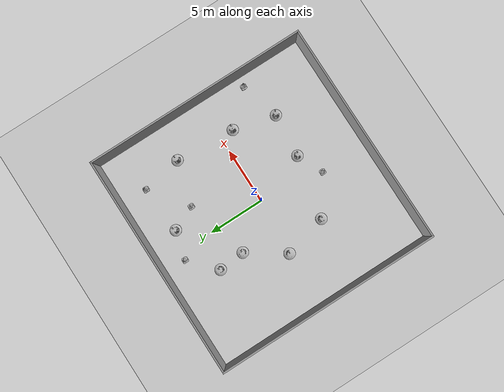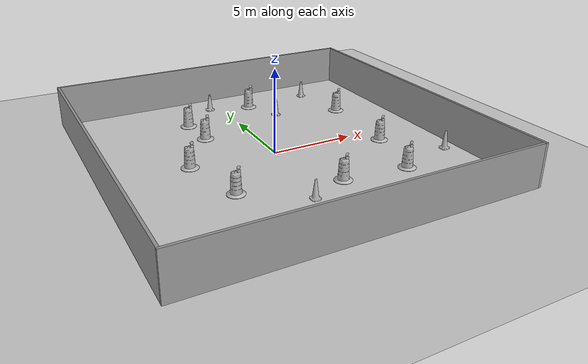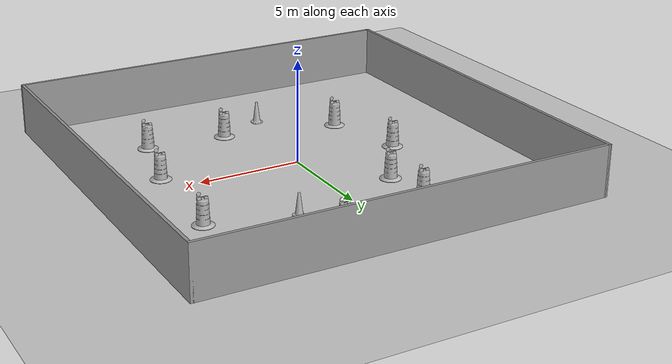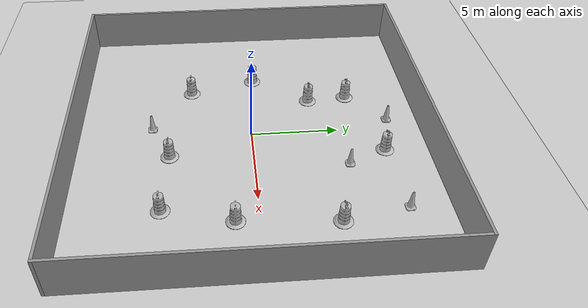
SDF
<sdf version="1.7">
 <world name="default">
  <light name="sun" type="directional">
   <pose>0 0 10 0 -0 0</pose>
   <diffuse>0.8 0.8 0.8 1</diffuse>
   <specular>0.2 0.2 0.2 1</specular>
   <attenuation>
    <range>1000</range>
    <constant>0.9</constant>
    <linear>0.01</linear>
    <quadratic>0.001</quadratic>
   </attenuation>
   <direction>-0.5 0.1 -0.9</direction>
   <spot><inner_angle>0</inner_angle><outer_angle>0</outer_angle><falloff>0</falloff></spot>
  </light>
  <model name="ground_plane">
   <static>1</static>
   <link name="link">
    <collision name="collision">
     <geometry><plane><normal>0 0 1</normal><size>100 100</size></plane></geometry>
     <surface><friction><ode><mu>100</mu><mu2>50</mu2></ode></friction></surface>
    </collision>
    <visual name="visual">
     <cast_shadows>0</cast_shadows>
     <geometry><plane><normal>0 0 1</normal><size>100 100</size></plane></geometry>
     <material>
      <script><uri>file://media/materials/scripts/gazebo.material</uri><name>Gazebo/Grey</name></script>
     </material>
    </visual>
   </link>
  </model>
  <gravity>0 0 -9.8</gravity>
  <magnetic_field>6e-06 2.3e-05 -4.2e-05</magnetic_field>
  <atmosphere type="adiabatic"/>
  <physics type="ode">
   <max_step_size>0.001</max_step_size>
   <real_time_factor>1</real_time_factor>
   <real_time_update_rate>1000</real_time_update_rate>
  </physics>
  <scene><ambient>0.4 0.4 0.4 1</ambient><background>0.7 0.7 0.7 1</background><shadows>1</shadows></scene>
  <audio><device>default</device></audio>
  <spherical_coordinates>
   <surface_model>EARTH_WGS84</surface_model>
   <latitude_deg>0</latitude_deg>
   <longitude_deg>0</longitude_deg>
   <elevation>0</elevation>
   <heading_deg>0</heading_deg>
  </spherical_coordinates>
  <model name="pista_cerrada">
   <link name="Wall_18">
    <collision name="Wall_18_Collision">
     <geometry><box><size>20 0.15 2.5</size></box></geometry>
     <pose>0 0 1.25 0 -0 0</pose>
    </collision>
    <visual name="Wall_18_Visual">
     <pose>0 0 1.25 0 -0 0</pose>
     <geometry><box><size>20 0.15 2.5</size></box></geometry>
     <material>
      <script><uri>file://media/materials/scripts/gazebo.material</uri><name>Gazebo/Grey</name></script>
      <ambient>1 1 1 1</ambient>
     </material>
     <meta><layer>0</layer></meta>
    </visual>
    <pose>-0 -9.925 0 0 -0 0</pose>
   </link>
   <link name="Wall_20">
    <collision name="Wall_20_Collision">
     <geometry><box><size>20 0.15 2.5</size></box></geometry>
     <pose>0 0 1.25 0 -0 0</pose>
    </collision>
    <visual name="Wall_20_Visual">
     <pose>0 0 1.25 0 -0 0</pose>
     <geometry><box><size>20 0.15 2.5</size></box></geometry>
     <material>
      <script><uri>file://media/materials/scripts/gazebo.material</uri><name>Gazebo/Grey</name></script>
      <ambient>1 1 1 1</ambient>
     </material>
     <meta><layer>0</layer></meta>
    </visual>
    <pose>-9.925 -0 0 0 -0 1.5708</pose>
   </link>
   <link name="Wall_22">
    <collision name="Wall_22_Collision">
     <geometry><box><size>20 0.15 2.5</size></box></geometry>
     <pose>0 0 1.25 0 -0 0</pose>
    </collision>
    <visual name="Wall_22_Visual">
     <pose>0 0 1.25 0 -0 0</pose>
     <geometry><box><size>20 0.15 2.5</size></box></geometry>
     <material>
      <script><uri>file://media/materials/scripts/gazebo.material</uri><name>Gazebo/Grey</name></script>
      <ambient>1 1 1 1</ambient>
     </material>
     <meta><layer>0</layer></meta>
    </visual>
    <pose>-0 9.925 0 0 -0 0</pose>
   </link>
   <link name="Wall_25">
    <collision name="Wall_25_Collision">
     <geometry><box><size>20 0.15 2.5</size></box></geometry>
     <pose>0 0 1.25 0 -0 0</pose>
    </collision>
    <visual name="Wall_25_Visual">
     <pose>0 0 1.25 0 -0 0</pose>
     <geometry><box><size>20 0.15 2.5</size></box></geometry>
     <material>
      <script><uri>file://media/materials/scripts/gazebo.material</uri><name>Gazebo/Grey</name></script>
      <ambient>1 1 1 1</ambient>
     </material>
     <meta><layer>0</layer></meta>
    </visual>
    <pose>9.925 -0 0 0 -0 -1.5708</pose>
   </link>
   <static>1</static>
  </model>
  <model name="Construction Cone">
   <link name="link">
    <collision name="collision">
     <geometry>
      <mesh><scale>10 10 10</scale><uri>model://construction_cone/meshes/construction_cone.dae</uri></mesh>
     </geometry>
    </collision>
    <visual name="visual">
     <geometry>
      <mesh><scale>10 10 10</scale><uri>model://construction_cone/meshes/construction_cone.dae</uri></mesh>
     </geometry>
    </visual>
    <inertial>
     <inertia><ixx>1</ixx><ixy>0</ixy><ixz>0</ixz><iyy>1</iyy><iyz>0</iyz><izz>1</izz></inertia>
     <mass>1</mass>
    </inertial>
   </link>
   <pose>2.79879 5.22335 -0 0 -1e-06 0</pose>
  </model>
  <model name="Construction Barrel">
   <link name="link">
    <inertial>
     <pose>0 0 0.4 0 -0 0</pose>
     <mass>500</mass>
     <inertia><ixx>51.2096</ixx><iyy>51.2096</iyy><izz>25</izz><ixy>0</ixy><ixz>0</ixz><iyz>0</iyz></inertia>
    </inertial>
    <collision name="collision">
     <geometry><mesh><uri>model://construction_barrel/meshes/construction_barrel.dae</uri></mesh></geometry>
    </collision>
    <visual name="visual">
     <geometry><mesh><uri>model://construction_barrel/meshes/construction_barrel.dae</uri></mesh></geometry>
    </visual>
   </link>
   <pose>-2.79935 3.66326 -0 0 0 -2.7e-05</pose>
  </model>
  <model name="Construction Barrel_clone">
   <link name="link">
    <inertial>
     <pose>0 0 0.4 0 -0 0</pose>
     <mass>500</mass>
     <inertia><ixx>51.2096</ixx><iyy>51.2096</iyy><izz>25</izz><ixy>0</ixy><ixz>0</ixz><iyz>0</iyz></inertia>
    </inertial>
    <collision name="collision">
     <geometry><mesh><uri>model://construction_barrel/meshes/construction_barrel.dae</uri></mesh></geometry>
    </collision>
    <visual name="visual">
     <geometry><mesh><uri>model://construction_barrel/meshes/construction_barrel.dae</uri></mesh></geometry>
    </visual>
   </link>
   <pose>-3.00011 5.99996 -2e-06 -7e-06 4e-06 -2.5e-05</pose>
  </model>
  <model name="Construction Barrel_clone_0">
   <link name="link">
    <inertial>
     <pose>0 0 0.4 0 -0 0</pose>
     <mass>500</mass>
     <inertia><ixx>51.2096</ixx><iyy>51.2096</iyy><izz>25</izz><ixy>0</ixy><ixz>0</ixz><iyz>0</iyz></inertia>
    </inertial>
    <collision name="collision">
     <geometry><mesh><uri>model://construction_barrel/meshes/construction_barrel.dae</uri></mesh></geometry>
    </collision>
    <visual name="visual">
     <geometry><mesh><uri>model://construction_barrel/meshes/construction_barrel.dae</uri></mesh></geometry>
    </visual>
   </link>
   <pose>1.82626 7.39094 -0 0 0 -2.3e-05</pose>
  </model>
  <model name="Construction Barrel_clone_1">
   <link name="link">
    <inertial>
     <pose>0 0 0.4 0 -0 0</pose>
     <mass>500</mass>
     <inertia><ixx>51.2096</ixx><iyy>51.2096</iyy><izz>25</izz><ixy>0</ixy><ixz>0</ixz><iyz>0</iyz></inertia>
    </inertial>
    <collision name="collision">
     <geometry><mesh><uri>model://construction_barrel/meshes/construction_barrel.dae</uri></mesh></geometry>
    </collision>
    <visual name="visual">
     <geometry><mesh><uri>model://construction_barrel/meshes/construction_barrel.dae</uri></mesh></geometry>
    </visual>
   </link>
   <pose>6.75381 4.10185 -1e-06 3e-06 0 -2.9e-05</pose>
  </model>
  <model name="Construction Barrel_clone_2">
   <link name="link">
    <inertial>
     <pose>0 0 0.4 0 -0 0</pose>
     <mass>500</mass>
     <inertia><ixx>51.2096</ixx><iyy>51.2096</iyy><izz>25</izz><ixy>0</ixy><ixz>0</ixz><iyz>0</iyz></inertia>
    </inertial>
    <collision name="collision">
     <geometry><mesh><uri>model://construction_barrel/meshes/construction_barrel.dae</uri></mesh></geometry>
    </collision>
    <visual name="visual">
     <geometry><mesh><uri>model://construction_barrel/meshes/construction_barrel.dae</uri></mesh></geometry>
    </visual>
   </link>
   <pose>5.47265 -5.00003 -1e-06 -1e-06 4e-06 -2.4e-05</pose>
  </model>
  <model name="Construction Barrel_clone_3">
   <link name="link">
    <inertial>
     <pose>0 0 0.4 0 -0 0</pose>
     <mass>500</mass>
     <inertia><ixx>51.2096</ixx><iyy>51.2096</iyy><izz>25</izz><ixy>0</ixy><ixz>0</ixz><iyz>0</iyz></inertia>
    </inertial>
    <collision name="collision">
     <geometry><mesh><uri>model://construction_barrel/meshes/construction_barrel.dae</uri></mesh></geometry>
    </collision>
    <visual name="visual">
     <geometry><mesh><uri>model://construction_barrel/meshes/construction_barrel.dae</uri></mesh></geometry>
    </visual>
   </link>
   <pose>6.39947 -1.23479 -0 0 0 -1.9e-05</pose>
  </model>
  <model name="Construction Barrel_clone_4">
   <link name="link">
    <inertial>
     <pose>0 0 0.4 0 -0 0</pose>
     <mass>500</mass>
     <inertia><ixx>51.2096</ixx><iyy>51.2096</iyy><izz>25</izz><ixy>0</ixy><ixz>0</ixz><iyz>0</iyz></inertia>
    </inertial>
    <collision name="collision">
     <geometry><mesh><uri>model://construction_barrel/meshes/construction_barrel.dae</uri></mesh></geometry>
    </collision>
    <visual name="visual">
     <geometry><mesh><uri>model://construction_barrel/meshes/construction_barrel.dae</uri></mesh></geometry>
    </visual>
   </link>
   <pose>-4.00005 -3.43711 -1e-06 1e-06 4e-06 -2.2e-05</pose>
  </model>
  <model name="Construction Barrel_clone_5">
   <link name="link">
    <inertial>
     <pose>0 0 0.4 0 -0 0</pose>
     <mass>500</mass>
     <inertia><ixx>51.2096</ixx><iyy>51.2096</iyy><izz>25</izz><ixy>0</ixy><ixz>0</ixz><iyz>0</iyz></inertia>
    </inertial>
    <collision name="collision">
     <geometry><mesh><uri>model://construction_barrel/meshes/construction_barrel.dae</uri></mesh></geometry>
    </collision>
    <visual name="visual">
     <geometry><mesh><uri>model://construction_barrel/meshes/construction_barrel.dae</uri></mesh></geometry>
    </visual>
   </link>
   <pose>-5.00011 0.401726 1e-06 3e-06 2e-06 -2.5e-05</pose>
  </model>
  <model name="Construction Barrel_clone_6">
   <link name="link">
    <inertial>
     <pose>0 0 0.4 0 -0 0</pose>
     <mass>500</mass>
     <inertia><ixx>51.2096</ixx><iyy>51.2096</iyy><izz>25</izz><ixy>0</ixy><ixz>0</ixz><iyz>0</iyz></inertia>
    </inertial>
    <collision name="collision">
     <geometry><mesh><uri>model://construction_barrel/meshes/construction_barrel.dae</uri></mesh></geometry>
    </collision>
    <visual name="visual">
     <geometry><mesh><uri>model://construction_barrel/meshes/construction_barrel.dae</uri></mesh></geometry>
    </visual>
   </link>
   <pose>1.57029 -4.64915 0 0 0 -2e-05</pose>
  </model>
  <model name="Construction Cone_clone">
   <link name="link">
    <collision name="collision">
     <geometry>
      <mesh><scale>10 10 10</scale><uri>model://construction_cone/meshes/construction_cone.dae</uri></mesh>
     </geometry>
    </collision>
    <visual name="visual">
     <geometry>
      <mesh><scale>10 10 10</scale><uri>model://construction_cone/meshes/construction_cone.dae</uri></mesh>
     </geometry>
    </visual>
    <inertial>
     <inertia><ixx>1</ixx><ixy>0</ixy><ixz>0</ixz><iyy>1</iyy><iyz>0</iyz><izz>1</izz></inertia>
     <mass>1</mass>
    </inertial>
   </link>
   <pose>-0.711352 8.07022 0 -0 -0 -0</pose>
  </model>
  <model name="Construction Cone_clone_0">
   <link name="link">
    <collision name="collision">
     <geometry>
      <mesh><scale>10 10 10</scale><uri>model://construction_cone/meshes/construction_cone.dae</uri></mesh>
     </geometry>
    </collision>
    <visual name="visual">
     <geometry>
      <mesh><scale>10 10 10</scale><uri>model://construction_cone/meshes/construction_cone.dae</uri></mesh>
     </geometry>
    </visual>
    <inertial>
     <inertia><ixx>1</ixx><ixy>0</ixy><ixz>0</ixz><iyy>1</iyy><iyz>0</iyz><izz>1</izz></inertia>
     <mass>1</mass>
    </inertial>
   </link>
   <pose>6.08614 7.6619 -0 0 -0 0</pose>
  </model>
  <model name="Construction Cone_clone_1">
   <link name="link">
    <collision name="collision">
     <geometry>
      <mesh><scale>10 10 10</scale><uri>model://construction_cone/meshes/construction_cone.dae</uri></mesh>
     </geometry>
    </collision>
    <visual name="visual">
     <geometry>
      <mesh><scale>10 10 10</scale><uri>model://construction_cone/meshes/construction_cone.dae</uri></mesh>
     </geometry>
    </visual>
    <inertial>
     <inertia><ixx>1</ixx><ixy>0</ixy><ixz>0</ixz><iyy>1</iyy><iyz>0</iyz><izz>1</izz></inertia>
     <mass>1</mass>
    </inertial>
   </link>
   <pose>9 -4 -0 0 -1e-06 0</pose>
  </model>
  <model name="Construction Cone_clone_2">
   <link name="link">
    <collision name="collision">
     <geometry>
      <mesh><scale>10 10 10</scale><uri>model://construction_cone/meshes/construction_cone.dae</uri></mesh>
     </geometry>
    </collision>
    <visual name="visual">
     <geometry>
      <mesh><scale>10 10 10</scale><uri>model://construction_cone/meshes/construction_cone.dae</uri></mesh>
     </geometry>
    </visual>
    <inertial>
     <inertia><ixx>1</ixx><ixy>0</ixy><ixz>0</ixz><iyy>1</iyy><iyz>0</iyz><izz>1</izz></inertia>
     <mass>1</mass>
    </inertial>
   </link>
   <pose>-0.745473 -5.6887 -0 0 -1e-06 0</pose>
  </model>
 </world>
</sdf>
